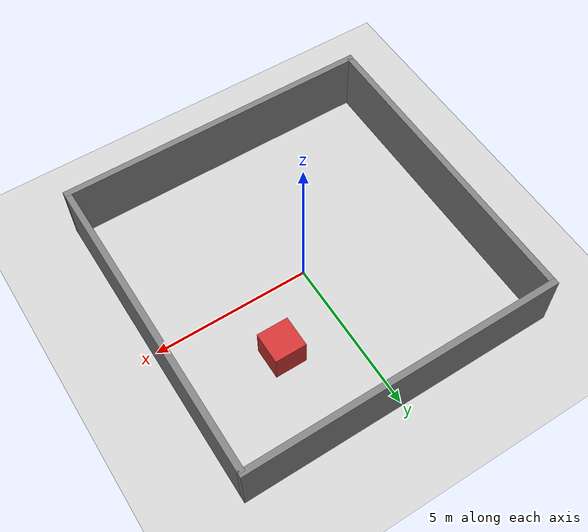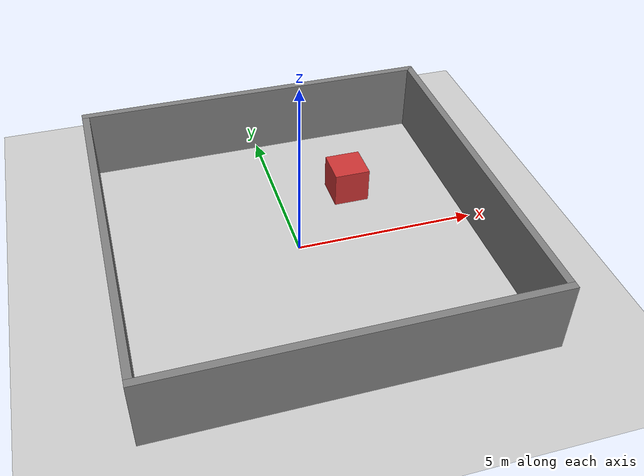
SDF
<?xml version="1.0" encoding="utf-8"?>
<sdf version='1.8'>
  <world name='single_room'>
    <plugin filename="gz-sim-physics-system" name="gz::sim::systems::Physics" />
    <plugin filename="gz-sim-user-commands-system" name="gz::sim::systems::UserCommands" />
    <plugin filename="gz-sim-scene-broadcaster-system" name="gz::sim::systems::SceneBroadcaster" />
    <plugin filename="gz-sim-sensors-system" name="gz::sim::systems::Sensors">
      <render_engine>ogre2</render_engine>
    </plugin>

    <gravity>0 0 -9.8</gravity>
    <magnetic_field>6e-06 2.3e-05 -4.2e-05</magnetic_field>
    <atmosphere type='adiabatic'/>
    <physics name='default_physics' default='0' type='ode'>
      <max_step_size>0.001</max_step_size>
      <real_time_factor>1</real_time_factor>
      <real_time_update_rate>1000</real_time_update_rate>
    </physics>

    <light type="directional" name="sun">
      <cast_shadows>true</cast_shadows>
      <pose>0 0 10 0 0 0</pose>
      <diffuse>0.8 0.8 0.8 1</diffuse>
      <specular>0.2 0.2 0.2 1</specular>
      <attenuation>
        <range>1000</range>
        <constant>0.9</constant>
        <linear>0.01</linear>
        <quadratic>0.001</quadratic>
      </attenuation>
      <direction>-0.5 0.1 -0.9</direction>
    </light>

    <model name="ground_plane">
      <static>true</static>
      <link name="link">
        <collision name="collision">
          <geometry>
            <plane>
              <normal>0 0 1</normal>
              <size>10 10</size>
            </plane>
          </geometry>
        </collision>
        <visual name="visual">
          <geometry>
            <plane>
              <normal>0 0 1</normal>
              <size>10 10</size>
            </plane>
          </geometry>
          <material>
            <ambient>0.8 0.8 0.8 1</ambient>
            <diffuse>0.8 0.8 0.8 1</diffuse>
            <specular>0.8 0.8 0.8 1</specular>
          </material>
        </visual>
      </link>
    </model>

    <!-- Wall North -->
    <model name='wall_north'>
      <pose>0 5 1 0 0 0</pose>
      <static>true</static>
      <link name='link'>
        <collision name='collision'>
          <geometry>
            <box>
              <size>10.2 0.2 2</size>
            </box>
          </geometry>
        </collision>
        <visual name='visual'>
          <geometry>
            <box>
              <size>10.2 0.2 2</size>
            </box>
          </geometry>
          <material>
            <ambient>0.5 0.5 0.5 1</ambient>
            <diffuse>0.5 0.5 0.5 1</diffuse>
          </material>
        </visual>
      </link>
    </model>

    <!-- Wall South -->
    <model name='wall_south'>
      <pose>0 -5 1 0 0 0</pose>
      <static>true</static>
      <link name='link'>
        <collision name='collision'>
          <geometry>
            <box>
              <size>10.2 0.2 2</size>
            </box>
          </geometry>
        </collision>
        <visual name='visual'>
          <geometry>
            <box>
              <size>10.2 0.2 2</size>
            </box>
          </geometry>
          <material>
            <ambient>0.5 0.5 0.5 1</ambient>
            <diffuse>0.5 0.5 0.5 1</diffuse>
          </material>
        </visual>
      </link>
    </model>

    <!-- Wall East -->
    <model name='wall_east'>
      <pose>5 0 1 0 0 0</pose>
      <static>true</static>
      <link name='link'>
        <collision name='collision'>
          <geometry>
            <box>
              <size>0.2 10 2</size>
            </box>
          </geometry>
        </collision>
        <visual name='visual'>
          <geometry>
            <box>
              <size>0.2 10 2</size>
            </box>
          </geometry>
          <material>
            <ambient>0.5 0.5 0.5 1</ambient>
            <diffuse>0.5 0.5 0.5 1</diffuse>
          </material>
        </visual>
      </link>
    </model>

    <!-- Wall West -->
    <model name='wall_west'>
      <pose>-5 0 1 0 0 0</pose>
      <static>true</static>
      <link name='link'>
        <collision name='collision'>
          <geometry>
            <box>
              <size>0.2 10 2</size>
            </box>
          </geometry>
        </collision>
        <visual name='visual'>
          <geometry>
            <box>
              <size>0.2 10 2</size>
            </box>
          </geometry>
          <material>
            <ambient>0.5 0.5 0.5 1</ambient>
            <diffuse>0.5 0.5 0.5 1</diffuse>
          </material>
        </visual>
      </link>
    </model>

    <!-- Central Obstacle -->
    <model name='central_box'>
      <pose>2 2 0.5 0 0 0</pose>
      <static>true</static>
      <link name='link'>
        <collision name='collision'>
          <geometry>
            <box>
              <size>1 1 1</size>
            </box>
          </geometry>
        </collision>
        <visual name='visual'>
          <geometry>
            <box>
              <size>1 1 1</size>
            </box>
          </geometry>
          <material>
            <ambient>0.8 0.2 0.2 1</ambient>
            <diffuse>0.8 0.2 0.2 1</diffuse>
          </material>
        </visual>
      </link>
    </model>

    <!-- Ideal Location Overhead Wide-Angle Camera -->
    <model name="destination_camera">
      <static>true</static>
      <!-- Position: x=4.5m, y=4.5m, z=4.0m, pitched down 0.56 rad, yawed -2.356 rad to point back at (0, 0, 0) -->
      <pose>4.5 4.5 4 0 0.56 -2.356</pose>
      <link name="link">
        <sensor name="camera" type="camera">
          <camera>
            <horizontal_fov>1.2</horizontal_fov>
            <image>
              <width>1280</width>
              <height>720</height>
              <format>R8G8B8</format>
            </image>
            <clip>
              <near>0.1</near>
              <far>100</far>
            </clip>
          </camera>
          <always_on>1</always_on>
          <!-- Reduced to 5 fps (was 15) to limit llvmpipe load while remaining smooth -->
          <update_rate>5</update_rate>
          <topic>destination_camera/image_raw</topic>
        </sensor>
      </link>
    </model>
  </world>
</sdf>
